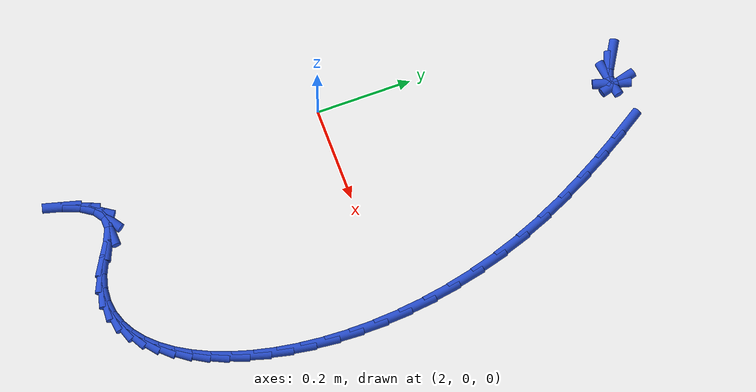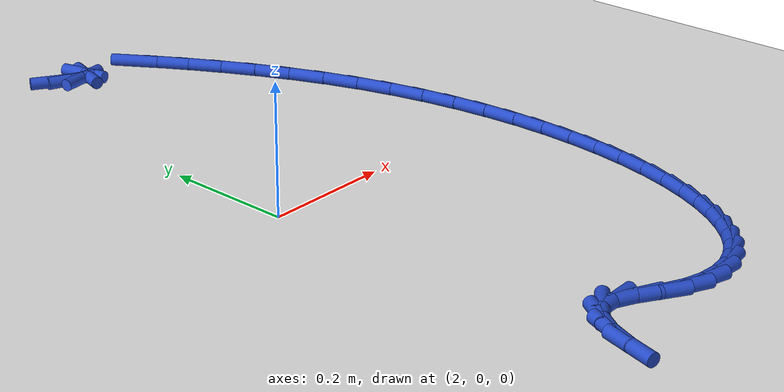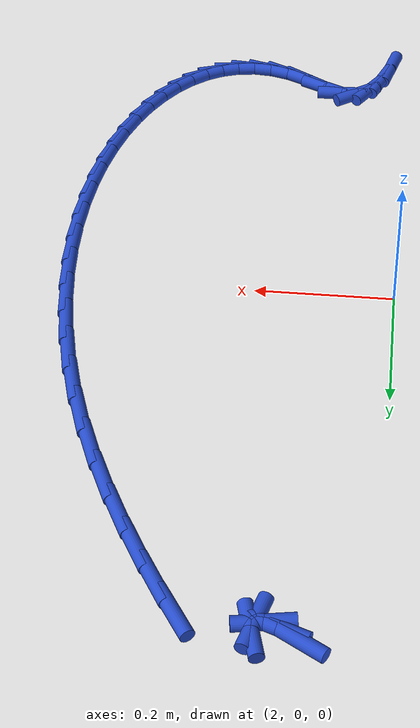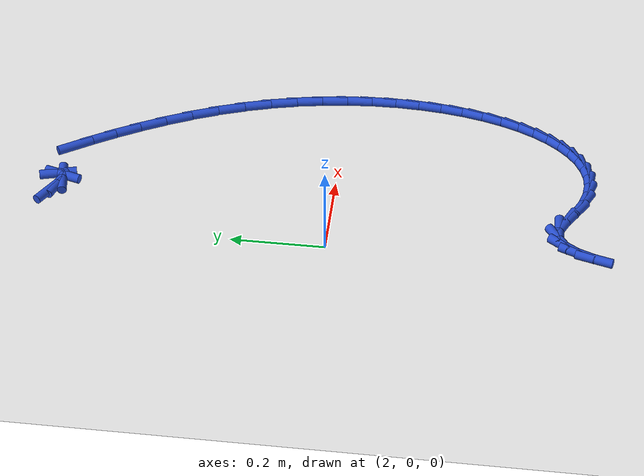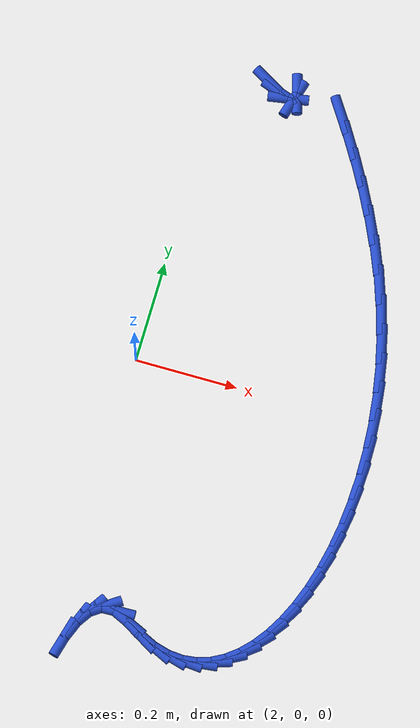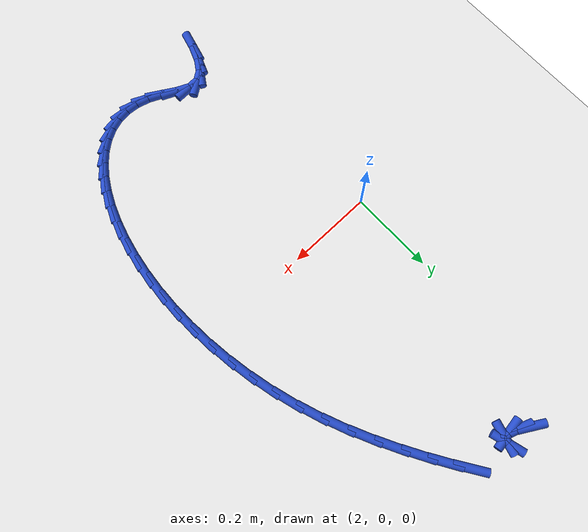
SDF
<sdf version="1.6">
 <world name="default">
  <model name="ground_plane">
   <static>1</static>
   <link name="link">
    <collision name="collision">
     <geometry><plane><normal>0 0 1</normal><size>100 100</size></plane></geometry>
     <surface><friction><ode><mu>100</mu><mu2>50</mu2></ode></friction></surface>
    </collision>
    <visual name="visual">
     <cast_shadows>0</cast_shadows>
     <geometry><plane><normal>0 0 1</normal><size>100 100</size></plane></geometry>
     <material>
      <script><uri>file://media/materials/scripts/gazebo.material</uri><name>Gazebo/WhiteGlow</name></script>
     </material>
    </visual>
   </link>
  </model>
  <model name="line">
   <link name="link_94">
    <pose>2.096907053372894 0.6036561079072594 0.01 0 1.57 -0.5341203534777037</pose>
    <collision name="collision">
     <geometry><cylinder><radius>0.01</radius><length>0.08</length></cylinder></geometry>
    </collision>
    <visual name="visual">
     <material>
      <script><name>Gazebo/Blue</name><uri>file://media/materials/scripts/gazebo.material</uri></script>
     </material>
     <geometry><cylinder><radius>0.01</radius><length>0.08</length></cylinder></geometry>
    </visual>
   </link>
   <link name="link_95">
    <pose>2.120346551660913 0.5897924579206644 0.01 0 1.57 -0.35334248293835285</pose>
    <collision name="collision">
     <geometry><cylinder><radius>0.01</radius><length>0.08</length></cylinder></geometry>
    </collision>
    <visual name="visual">
     <material>
      <script><name>Gazebo/Blue</name><uri>file://media/materials/scripts/gazebo.material</uri></script>
     </material>
     <geometry><cylinder><radius>0.01</radius><length>0.08</length></cylinder></geometry>
    </visual>
   </link>
   <link name="link_96">
    <pose>2.1380376737114593 0.5832676007550979 0.01 0 1.57 0.15842279414602378</pose>
    <collision name="collision">
     <geometry><cylinder><radius>0.01</radius><length>0.08</length></cylinder></geometry>
    </collision>
    <visual name="visual">
     <material>
      <script><name>Gazebo/Blue</name><uri>file://media/materials/scripts/gazebo.material</uri></script>
     </material>
     <geometry><cylinder><radius>0.01</radius><length>0.08</length></cylinder></geometry>
    </visual>
   </link>
   <link name="link_97">
    <pose>2.1489670586949967 0.5850136966738678 0.01 0 1.57 1.2903075884243163</pose>
    <collision name="collision">
     <geometry><cylinder><radius>0.01</radius><length>0.08</length></cylinder></geometry>
    </collision>
    <visual name="visual">
     <material>
      <script><name>Gazebo/Blue</name><uri>file://media/materials/scripts/gazebo.material</uri></script>
     </material>
     <geometry><cylinder><radius>0.01</radius><length>0.08</length></cylinder></geometry>
    </visual>
   </link>
   <link name="link_98">
    <pose>2.1521213457819908 0.5959629059402827 0.01 0 1.57 -1.3104863206941457</pose>
    <collision name="collision">
     <geometry><cylinder><radius>0.01</radius><length>0.08</length></cylinder></geometry>
    </collision>
    <visual name="visual">
     <material>
      <script><name>Gazebo/Blue</name><uri>file://media/materials/scripts/gazebo.material</uri></script>
     </material>
     <geometry><cylinder><radius>0.01</radius><length>0.08</length></cylinder></geometry>
    </visual>
   </link>
   <link name="link_113">
    <pose>2.2462374287266447 0.5777744687680118 0.01 0 1.57 -0.9978713451272625</pose>
    <collision name="collision">
     <geometry><cylinder><radius>0.01</radius><length>0.08</length></cylinder></geometry>
    </collision>
    <visual name="visual">
     <material>
      <script><name>Gazebo/Blue</name><uri>file://media/materials/scripts/gazebo.material</uri></script>
     </material>
     <geometry><cylinder><radius>0.01</radius><length>0.08</length></cylinder></geometry>
    </visual>
   </link>
   <link name="link_114">
    <pose>2.275741243864518 0.5320394230002377 0.01 0 1.57 -1.029561482406547</pose>
    <collision name="collision">
     <geometry><cylinder><radius>0.01</radius><length>0.08</length></cylinder></geometry>
    </collision>
    <visual name="visual">
     <material>
      <script><name>Gazebo/Blue</name><uri>file://media/materials/scripts/gazebo.material</uri></script>
     </material>
     <geometry><cylinder><radius>0.01</radius><length>0.08</length></cylinder></geometry>
    </visual>
   </link>
   <link name="link_115">
    <pose>2.305116258138331 0.4831714237019607 0.01 0 1.57 -1.0634075030595342</pose>
    <collision name="collision">
     <geometry><cylinder><radius>0.01</radius><length>0.08</length></cylinder></geometry>
    </collision>
    <visual name="visual">
     <material>
      <script><name>Gazebo/Blue</name><uri>file://media/materials/scripts/gazebo.material</uri></script>
     </material>
     <geometry><cylinder><radius>0.01</radius><length>0.08</length></cylinder></geometry>
    </visual>
   </link>
   <link name="link_116">
    <pose>2.3337119474791623 0.431734364483027 0.01 0 1.57 -1.1005135804435942</pose>
    <collision name="collision">
     <geometry><cylinder><radius>0.01</radius><length>0.08</length></cylinder></geometry>
    </collision>
    <visual name="visual">
     <material>
      <script><name>Gazebo/Blue</name><uri>file://media/materials/scripts/gazebo.material</uri></script>
     </material>
     <geometry><cylinder><radius>0.01</radius><length>0.08</length></cylinder></geometry>
    </visual>
   </link>
   <link name="link_117">
    <pose>2.3608777878180893 0.3782921389532823 0.01 0 1.57 -1.1420805729292471</pose>
    <collision name="collision">
     <geometry><cylinder><radius>0.01</radius><length>0.08</length></cylinder></geometry>
    </collision>
    <visual name="visual">
     <material>
      <script><name>Gazebo/Blue</name><uri>file://media/materials/scripts/gazebo.material</uri></script>
     </material>
     <geometry><cylinder><radius>0.01</radius><length>0.08</length></cylinder></geometry>
    </visual>
   </link>
   <link name="link_118">
    <pose>2.3859632550861907 0.3234086407225728 0.01 0 1.57 -1.1895137968270022</pose>
    <collision name="collision">
     <geometry><cylinder><radius>0.01</radius><length>0.08</length></cylinder></geometry>
    </collision>
    <visual name="visual">
     <material>
      <script><name>Gazebo/Blue</name><uri>file://media/materials/scripts/gazebo.material</uri></script>
     </material>
     <geometry><cylinder><radius>0.01</radius><length>0.08</length></cylinder></geometry>
    </visual>
   </link>
   <link name="link_119">
    <pose>2.4083178252145423 0.26764776340074403 0.01 0 1.57 -1.2434398417094075</pose>
    <collision name="collision">
     <geometry><cylinder><radius>0.01</radius><length>0.08</length></cylinder></geometry>
    </collision>
    <visual name="visual">
     <material>
      <script><name>Gazebo/Blue</name><uri>file://media/materials/scripts/gazebo.material</uri></script>
     </material>
     <geometry><cylinder><radius>0.01</radius><length>0.08</length></cylinder></geometry>
    </visual>
   </link>
   <link name="link_120">
    <pose>2.4273691774665904 0.2115440586485102 0.01 0 1.57 -1.2984331081474696</pose>
    <collision name="collision">
     <geometry><cylinder><radius>0.01</radius><length>0.08</length></cylinder></geometry>
    </collision>
    <visual name="visual">
     <material>
      <script><name>Gazebo/Blue</name><uri>file://media/materials/scripts/gazebo.material</uri></script>
     </material>
     <geometry><cylinder><radius>0.01</radius><length>0.08</length></cylinder></geometry>
    </visual>
   </link>
   <link name="link_121">
    <pose>2.443037200356085 0.15544740084559666 0.01 0 1.57 -1.3522458209227795</pose>
    <collision name="collision">
     <geometry><cylinder><radius>0.01</radius><length>0.08</length></cylinder></geometry>
    </collision>
    <visual name="visual">
     <material>
      <script><name>Gazebo/Blue</name><uri>file://media/materials/scripts/gazebo.material</uri></script>
     </material>
     <geometry><cylinder><radius>0.01</radius><length>0.08</length></cylinder></geometry>
    </visual>
   </link>
   <link name="link_122">
    <pose>2.4554327984305484 0.09963599501216726 0.01 0 1.57 -1.4051813196880665</pose>
    <collision name="collision">
     <geometry><cylinder><radius>0.01</radius><length>0.08</length></cylinder></geometry>
    </collision>
    <visual name="visual">
     <material>
      <script><name>Gazebo/Blue</name><uri>file://media/materials/scripts/gazebo.material</uri></script>
     </material>
     <geometry><cylinder><radius>0.01</radius><length>0.08</length></cylinder></geometry>
    </visual>
   </link>
   <link name="link_123">
    <pose>2.464667297822556 0.044387887989355536 0.01 0 1.57 -1.4576065076188833</pose>
    <collision name="collision">
     <geometry><cylinder><radius>0.01</radius><length>0.08</length></cylinder></geometry>
    </collision>
    <visual name="visual">
     <material>
      <script><name>Gazebo/Blue</name><uri>file://media/materials/scripts/gazebo.material</uri></script>
     </material>
     <geometry><cylinder><radius>0.01</radius><length>0.08</length></cylinder></geometry>
    </visual>
   </link>
   <link name="link_124">
    <pose>2.470852024664682 -0.010018873381704901 0.01 0 1.57 -1.5099512623436173</pose>
    <collision name="collision">
     <geometry><cylinder><radius>0.01</radius><length>0.08</length></cylinder></geometry>
    </collision>
    <visual name="visual">
     <material>
      <script><name>Gazebo/Blue</name><uri>file://media/materials/scripts/gazebo.material</uri></script>
     </material>
     <geometry><cylinder><radius>0.01</radius><length>0.08</length></cylinder></geometry>
    </visual>
   </link>
   <link name="link_125">
    <pose>2.474098305089503 -0.06330624225988059 0.01 0 1.57 -1.5627186318140691</pose>
    <collision name="collision">
     <geometry><cylinder><radius>0.01</radius><length>0.08</length></cylinder></geometry>
    </collision>
    <visual name="visual">
     <material>
      <script><name>Gazebo/Blue</name><uri>file://media/materials/scripts/gazebo.material</uri></script>
     </material>
     <geometry><cylinder><radius>0.01</radius><length>0.08</length></cylinder></geometry>
    </visual>
   </link>
   <link name="link_126">
    <pose>2.4745174652295923 -0.1151961718040378 0.01 0 1.57 1.525091655467712</pose>
    <collision name="collision">
     <geometry><cylinder><radius>0.01</radius><length>0.08</length></cylinder></geometry>
    </collision>
    <visual name="visual">
     <material>
      <script><name>Gazebo/Blue</name><uri>file://media/materials/scripts/gazebo.material</uri></script>
     </material>
     <geometry><cylinder><radius>0.01</radius><length>0.08</length></cylinder></geometry>
    </visual>
   </link>
   <link name="link_127">
    <pose>2.472220831217527 -0.16541061517304315 0.01 0 1.57 1.4695890206238336</pose>
    <collision name="collision">
     <geometry><cylinder><radius>0.01</radius><length>0.08</length></cylinder></geometry>
    </collision>
    <visual name="visual">
     <material>
      <script><name>Gazebo/Blue</name><uri>file://media/materials/scripts/gazebo.material</uri></script>
     </material>
     <geometry><cylinder><radius>0.01</radius><length>0.08</length></cylinder></geometry>
    </visual>
   </link>
   <link name="link_128">
    <pose>2.4673197291858826 -0.21367152552576293 0.01 0 1.57 1.4115151479090158</pose>
    <collision name="collision">
     <geometry><cylinder><radius>0.01</radius><length>0.08</length></cylinder></geometry>
    </collision>
    <visual name="visual">
     <material>
      <script><name>Gazebo/Blue</name><uri>file://media/materials/scripts/gazebo.material</uri></script>
     </material>
     <geometry><cylinder><radius>0.01</radius><length>0.08</length></cylinder></geometry>
    </visual>
   </link>
   <link name="link_129">
    <pose>2.4599254852672328 -0.2597008560210635 0.01 0 1.57 1.3498290829950192</pose>
    <collision name="collision">
     <geometry><cylinder><radius>0.01</radius><length>0.08</length></cylinder></geometry>
    </collision>
    <visual name="visual">
     <material>
      <script><name>Gazebo/Blue</name><uri>file://media/materials/scripts/gazebo.material</uri></script>
     </material>
     <geometry><cylinder><radius>0.01</radius><length>0.08</length></cylinder></geometry>
    </visual>
   </link>
   <link name="link_130">
    <pose>2.450149425594154 -0.30322055981781143 0.01 0 1.57 1.2832420020548578</pose>
    <collision name="collision">
     <geometry><cylinder><radius>0.01</radius><length>0.08</length></cylinder></geometry>
    </collision>
    <visual name="visual">
     <material>
      <script><name>Gazebo/Blue</name><uri>file://media/materials/scripts/gazebo.material</uri></script>
     </material>
     <geometry><cylinder><radius>0.01</radius><length>0.08</length></cylinder></geometry>
    </visual>
   </link>
   <link name="link_131">
    <pose>2.43810287629922 -0.34395259007487305 0.01 0 1.57 1.210145219358955</pose>
    <collision name="collision">
     <geometry><cylinder><radius>0.01</radius><length>0.08</length></cylinder></geometry>
    </collision>
    <visual name="visual">
     <material>
      <script><name>Gazebo/Blue</name><uri>file://media/materials/scripts/gazebo.material</uri></script>
     </material>
     <geometry><cylinder><radius>0.01</radius><length>0.08</length></cylinder></geometry>
    </visual>
   </link>
   <link name="link_132">
    <pose>2.4238971635150084 -0.3816188999511149 0.01 0 1.57 1.1285291054625035</pose>
    <collision name="collision">
     <geometry><cylinder><radius>0.01</radius><length>0.08</length></cylinder></geometry>
    </collision>
    <visual name="visual">
     <material>
      <script><name>Gazebo/Blue</name><uri>file://media/materials/scripts/gazebo.material</uri></script>
     </material>
     <geometry><cylinder><radius>0.01</radius><length>0.08</length></cylinder></geometry>
    </visual>
   </link>
   <link name="link_133">
    <pose>2.4076436133740926 -0.4159414426054033 0.01 0 1.57 1.0359126846279523</pose>
    <collision name="collision">
     <geometry><cylinder><radius>0.01</radius><length>0.08</length></cylinder></geometry>
    </collision>
    <visual name="visual">
     <material>
      <script><name>Gazebo/Blue</name><uri>file://media/materials/scripts/gazebo.material</uri></script>
     </material>
     <geometry><cylinder><radius>0.01</radius><length>0.08</length></cylinder></geometry>
    </visual>
   </link>
   <link name="link_134">
    <pose>2.3894535520090483 -0.44664217119660454 0.01 0 1.57 0.9293377792742837</pose>
    <collision name="collision">
     <geometry><cylinder><radius>0.01</radius><length>0.08</length></cylinder></geometry>
    </collision>
    <visual name="visual">
     <material>
      <script><name>Gazebo/Blue</name><uri>file://media/materials/scripts/gazebo.material</uri></script>
     </material>
     <geometry><cylinder><radius>0.01</radius><length>0.08</length></cylinder></geometry>
    </visual>
   </link>
   <link name="link_135">
    <pose>2.369438305552451 -0.4734430388835854 0.01 0 1.57 0.8055490521979939</pose>
    <collision name="collision">
     <geometry><cylinder><radius>0.01</radius><length>0.08</length></cylinder></geometry>
    </collision>
    <visual name="visual">
     <material>
      <script><name>Gazebo/Blue</name><uri>file://media/materials/scripts/gazebo.material</uri></script>
     </material>
     <geometry><cylinder><radius>0.01</radius><length>0.08</length></cylinder></geometry>
    </visual>
   </link>
   <link name="link_136">
    <pose>2.347709200136876 -0.49606599882521213 0.01 0 1.57 0.6615817375831885</pose>
    <collision name="collision">
     <geometry><cylinder><radius>0.01</radius><length>0.08</length></cylinder></geometry>
    </collision>
    <visual name="visual">
     <material>
      <script><name>Gazebo/Blue</name><uri>file://media/materials/scripts/gazebo.material</uri></script>
     </material>
     <geometry><cylinder><radius>0.01</radius><length>0.08</length></cylinder></geometry>
    </visual>
   </link>
   <link name="link_137">
    <pose>2.3243775618948983 -0.5142330041803509 0.01 0 1.57 0.4960269864508927</pose>
    <collision name="collision">
     <geometry><cylinder><radius>0.01</radius><length>0.08</length></cylinder></geometry>
    </collision>
    <visual name="visual">
     <material>
      <script><name>Gazebo/Blue</name><uri>file://media/materials/scripts/gazebo.material</uri></script>
     </material>
     <geometry><cylinder><radius>0.01</radius><length>0.08</length></cylinder></geometry>
    </visual>
   </link>
   <link name="link_138">
    <pose>2.299554716959093 -0.5276660081078686 0.01 0 1.57 0.3109516188819174</pose>
    <collision name="collision">
     <geometry><cylinder><radius>0.01</radius><length>0.08</length></cylinder></geometry>
    </collision>
    <visual name="visual">
     <material>
      <script><name>Gazebo/Blue</name><uri>file://media/materials/scripts/gazebo.material</uri></script>
     </material>
     <geometry><cylinder><radius>0.01</radius><length>0.08</length></cylinder></geometry>
    </visual>
   </link>
   <link name="link_139">
    <pose>2.2733519914620355 -0.5360869637666311 0.01 0 1.57 0.11347887082862546</pose>
    <collision name="collision">
     <geometry><cylinder><radius>0.01</radius><length>0.08</length></cylinder></geometry>
    </collision>
    <visual name="visual">
     <material>
      <script><name>Gazebo/Blue</name><uri>file://media/materials/scripts/gazebo.material</uri></script>
     </material>
     <geometry><cylinder><radius>0.01</radius><length>0.08</length></cylinder></geometry>
    </visual>
   </link>
   <link name="link_140">
    <pose>2.245880711536301 -0.5392178243155054 0.01 0 1.57 -0.08492997416487416</pose>
    <collision name="collision">
     <geometry><cylinder><radius>0.01</radius><length>0.08</length></cylinder></geometry>
    </collision>
    <visual name="visual">
     <material>
      <script><name>Gazebo/Blue</name><uri>file://media/materials/scripts/gazebo.material</uri></script>
     </material>
     <geometry><cylinder><radius>0.01</radius><length>0.08</length></cylinder></geometry>
    </visual>
   </link>
   <link name="link_141">
    <pose>2.2172522033144646 -0.5367805429133574 0.01 0 1.57 -0.2722159019026477</pose>
    <collision name="collision">
     <geometry><cylinder><radius>0.01</radius><length>0.08</length></cylinder></geometry>
    </collision>
    <visual name="visual">
     <material>
      <script><name>Gazebo/Blue</name><uri>file://media/materials/scripts/gazebo.material</uri></script>
     </material>
     <geometry><cylinder><radius>0.01</radius><length>0.08</length></cylinder></geometry>
    </visual>
   </link>
   <link name="link_142">
    <pose>2.1875777929291025 -0.528497072719054 0.01 0 1.57 -0.4399316661680278</pose>
    <collision name="collision">
     <geometry><cylinder><radius>0.01</radius><length>0.08</length></cylinder></geometry>
    </collision>
    <visual name="visual">
     <material>
      <script><name>Gazebo/Blue</name><uri>file://media/materials/scripts/gazebo.material</uri></script>
     </material>
     <geometry><cylinder><radius>0.01</radius><length>0.08</length></cylinder></geometry>
    </visual>
   </link>
   <link name="link_143">
    <pose>2.156968844798248 -0.5140895310993542 0.01 0 1.57 -0.5418030234997473</pose>
    <collision name="collision">
     <geometry><cylinder><radius>0.01</radius><length>0.08</length></cylinder></geometry>
    </collision>
    <visual name="visual">
     <material>
      <script><name>Gazebo/Blue</name><uri>file://media/materials/scripts/gazebo.material</uri></script>
     </material>
     <geometry><cylinder><radius>0.01</radius><length>0.08</length></cylinder></geometry>
    </visual>
   </link>
   <link name="link_144">
    <pose>2.126049592990017 -0.4954797542390146 0.01 0 1.57 -0.429050088858589</pose>
    <collision name="collision">
     <geometry><cylinder><radius>0.01</radius><length>0.08</length></cylinder></geometry>
    </collision>
    <visual name="visual">
     <material>
      <script><name>Gazebo/Blue</name><uri>file://media/materials/scripts/gazebo.material</uri></script>
     </material>
     <geometry><cylinder><radius>0.01</radius><length>0.08</length></cylinder></geometry>
    </visual>
   </link>
   <link name="link_145">
    <pose>2.097242209265616 -0.48230118812814626 0.01 0 1.57 0.024922004841004118</pose>
    <collision name="collision">
     <geometry><cylinder><radius>0.01</radius><length>0.08</length></cylinder></geometry>
    </collision>
    <visual name="visual">
     <material>
      <script><name>Gazebo/Blue</name><uri>file://media/materials/scripts/gazebo.material</uri></script>
     </material>
     <geometry><cylinder><radius>0.01</radius><length>0.08</length></cylinder></geometry>
    </visual>
   </link>
   <link name="link_146">
    <pose>2.0726207969078256 -0.48291493015773346 0.01 0 1.57 0.5998328649240952</pose>
    <collision name="collision">
     <geometry><cylinder><radius>0.01</radius><length>0.08</length></cylinder></geometry>
    </collision>
    <visual name="visual">
     <material>
      <script><name>Gazebo/Blue</name><uri>file://media/materials/scripts/gazebo.material</uri></script>
     </material>
     <geometry><cylinder><radius>0.01</radius><length>0.08</length></cylinder></geometry>
    </visual>
   </link>
   <link name="link_147">
    <pose>2.052075860749567 -0.4969654368484141 0.01 0 1.57 0.9840631088209366</pose>
    <collision name="collision">
     <geometry><cylinder><radius>0.01</radius><length>0.08</length></cylinder></geometry>
    </collision>
    <visual name="visual">
     <material>
      <script><name>Gazebo/Blue</name><uri>file://media/materials/scripts/gazebo.material</uri></script>
     </material>
     <geometry><cylinder><radius>0.01</radius><length>0.08</length></cylinder></geometry>
    </visual>
   </link>
   <link name="link_148">
    <pose>2.035098293001935 -0.5225019631342289 0.01 0 1.57 1.1929822286725777</pose>
    <collision name="collision">
     <geometry><cylinder><radius>0.01</radius><length>0.08</length></cylinder></geometry>
    </collision>
    <visual name="visual">
     <material>
      <script><name>Gazebo/Blue</name><uri>file://media/materials/scripts/gazebo.material</uri></script>
     </material>
     <geometry><cylinder><radius>0.01</radius><length>0.08</length></cylinder></geometry>
    </visual>
   </link>
   <link name="link_149">
    <pose>2.0211789858760243 -0.5575737639492189 0.01 0 1.57 1.3103004635635975</pose>
    <collision name="collision">
     <geometry><cylinder><radius>0.01</radius><length>0.08</length></cylinder></geometry>
    </collision>
    <visual name="visual">
     <material>
      <script><name>Gazebo/Blue</name><uri>file://media/materials/scripts/gazebo.material</uri></script>
     </material>
     <geometry><cylinder><radius>0.01</radius><length>0.08</length></cylinder></geometry>
    </visual>
   </link>
  </model>
 </world>
</sdf>
